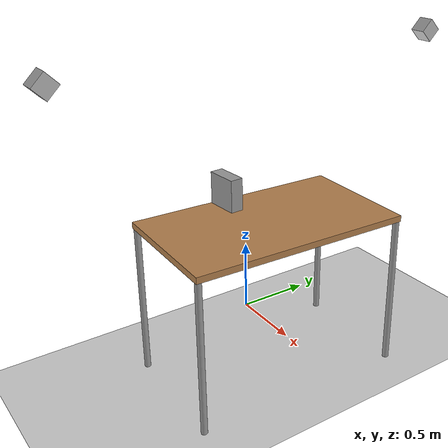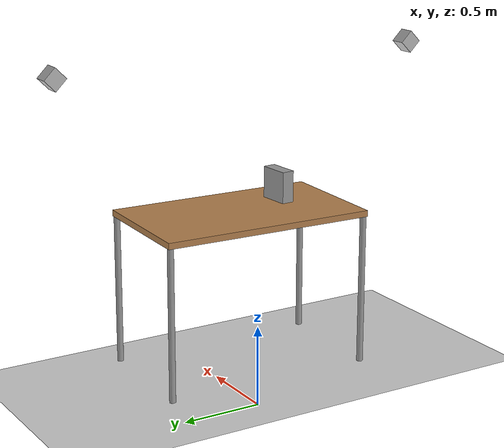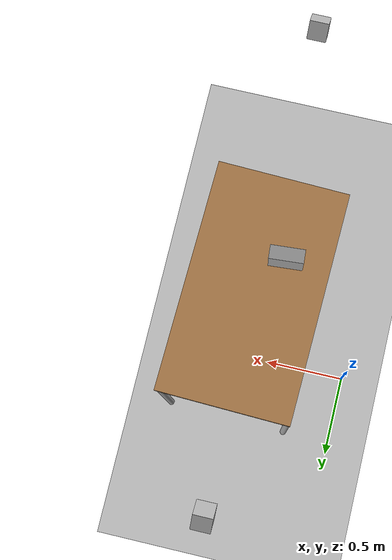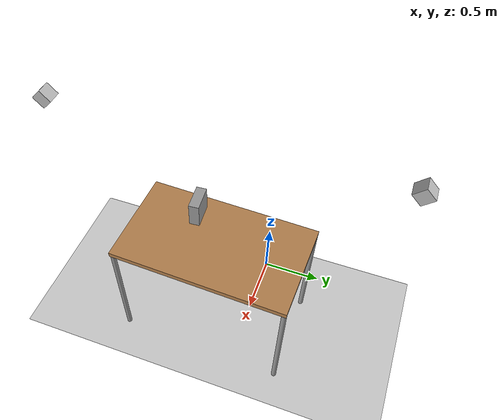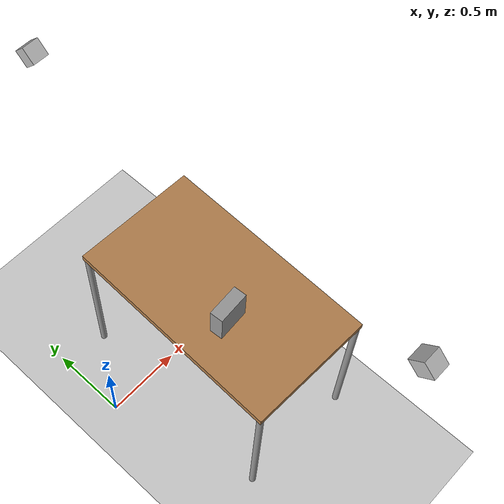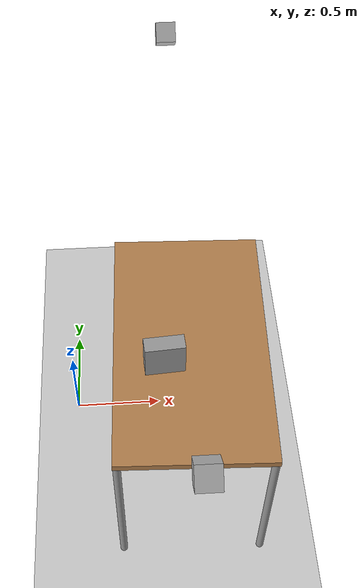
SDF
<sdf version="1.6">
 <world name="default">
  <light name="user_point_light_0" type="point">
   <pose>0.6 0.5 4 0 -0 0</pose>
   <diffuse>0.5 0.5 0.5 1</diffuse>
   <specular>0.1 0.1 0.1 1</specular>
   <attenuation>
    <range>20</range>
    <constant>0.5</constant>
    <linear>0.01</linear>
    <quadratic>0.001</quadratic>
   </attenuation>
   <cast_shadows>0</cast_shadows>
   <direction>0 0 -1</direction>
  </light>
  <light name="user_point_light_1" type="point">
   <pose>0.6 -1. 4 0 -0 0</pose>
   <diffuse>0.5 0.5 0.5 1</diffuse>
   <specular>0.1 0.1 0.1 1</specular>
   <attenuation>
    <range>20</range>
    <constant>0.5</constant>
    <linear>0.01</linear>
    <quadratic>0.001</quadratic>
   </attenuation>
   <cast_shadows>0</cast_shadows>
   <direction>0 0 -1</direction>
  </light>
  <light name="sun" type="directional">
   <pose>0 0 10 0 -0 0</pose>
   <diffuse>0.8 0.8 0.8 1</diffuse>
   <specular>0.1 0.1 0.1 1</specular>
   <attenuation>
    <range>1000</range>
    <constant>0.9</constant>
    <linear>0.01</linear>
    <quadratic>0.001</quadratic>
   </attenuation>
   <direction>-0.5 0.5 -1</direction>
  </light>
  <model name="ground_plane">
   <static>1</static>
   <link name="link">
    <collision name="collision">
     <geometry><plane><normal>0 0 1</normal><size>100 100</size></plane></geometry>
     <surface><friction><ode><mu>100</mu><mu2>50</mu2></ode></friction></surface>
    </collision>
    <visual name="visual">
     <cast_shadows>0</cast_shadows>
     <geometry><plane><normal>0 0 1</normal><size>100 100</size></plane></geometry>
     <material>
      <script><uri>file://media/materials/scripts/gazebo.material</uri><name>Gazebo/Grey</name></script>
     </material>
    </visual>
   </link>
  </model>
  <gravity>0 0 -9.8</gravity>
  <magnetic_field>6e-06 2.3e-05 -4.2e-05</magnetic_field>
  <atmosphere type="adiabatic"/>
  <physics name="default_physics" default="0" type="ode">
   <max_step_size>0.001</max_step_size>
   <real_time_factor>1</real_time_factor>
   <real_time_update_rate>1000</real_time_update_rate>
  </physics>
  <scene><ambient>0.4 0.4 0.4 1</ambient><background>0.7 0.7 0.7 1</background><shadows>1</shadows></scene>
  <spherical_coordinates>
   <surface_model>EARTH_WGS84</surface_model>
   <latitude_deg>0</latitude_deg>
   <longitude_deg>0</longitude_deg>
   <elevation>0</elevation>
   <heading_deg>0</heading_deg>
  </spherical_coordinates>
  <model name="table_0_0_0_0_0">
   <link name="link">
    <pose>-1.11781 1.78287 0 0 -0 0</pose>
    <inertial>
     <inertia><ixx>100</ixx><ixy>0</ixy><ixz>0</ixz><iyy>100</iyy><iyz>0</iyz><izz>100</izz></inertia>
     <mass>1000</mass>
     <pose>0 0 0.5 0 -0 0</pose>
    </inertial>
    <visual name="front_left_leg">
     <pose>0.68 0.38 0.5 0 -0 0</pose>
     <geometry><cylinder><radius>0.02</radius><length>1</length></cylinder></geometry>
     <material>
      <script><uri>file://media/materials/scripts/gazebo.material</uri><name>Gazebo/Grey</name></script>
      <ambient>0.3 0.3 0.3 1</ambient>
      <diffuse>0.7 0.7 0.7 1</diffuse>
      <specular>0.01 0.01 0.01 1</specular>
      <emissive>0 0 0 1</emissive>
      <shader type="vertex"><normal_map>__default__</normal_map></shader>
     </material>
    </visual>
    <visual name="visual1">
     <pose>0 0 1 0 -0 0</pose>
     <geometry><box><size>1.4 0.8 0.04</size></box></geometry>
     <material>
      <script><uri>file://media/materials/scripts/gazebo.material</uri><name>Gazebo/Wood</name></script>
      <ambient>1 1 1 1</ambient>
      <diffuse>1 1 1 1</diffuse>
      <specular>0.2 0.2 0.2 1</specular>
      <emissive>0 0 0 1</emissive>
      <shader type="vertex"><normal_map>__default__</normal_map></shader>
     </material>
    </visual>
    <visual name="front_right_leg">
     <pose>0.68 -0.38 0.5 0 -0 0</pose>
     <geometry><cylinder><radius>0.02</radius><length>1</length></cylinder></geometry>
     <material>
      <script><uri>file://media/materials/scripts/gazebo.material</uri><name>Gazebo/Grey</name></script>
      <ambient>0.3 0.3 0.3 1</ambient>
      <diffuse>0.7 0.7 0.7 1</diffuse>
      <specular>0.01 0.01 0.01 1</specular>
      <emissive>0 0 0 1</emissive>
      <shader type="vertex"><normal_map>__default__</normal_map></shader>
     </material>
    </visual>
    <visual name="back_right_leg">
     <pose>-0.68 -0.38 0.5 0 -0 0</pose>
     <geometry><cylinder><radius>0.02</radius><length>1</length></cylinder></geometry>
     <material>
      <script><uri>file://media/materials/scripts/gazebo.material</uri><name>Gazebo/Grey</name></script>
      <ambient>0.3 0.3 0.3 1</ambient>
      <diffuse>0.7 0.7 0.7 1</diffuse>
      <specular>0.01 0.01 0.01 1</specular>
      <emissive>0 0 0 1</emissive>
      <shader type="vertex"><normal_map>__default__</normal_map></shader>
     </material>
    </visual>
    <visual name="back_left_leg">
     <pose>-0.68 0.38 0.5 0 -0 0</pose>
     <geometry><cylinder><radius>0.02</radius><length>1</length></cylinder></geometry>
     <material>
      <script><uri>file://media/materials/scripts/gazebo.material</uri><name>Gazebo/Grey</name></script>
      <ambient>0.3 0.3 0.3 1</ambient>
      <diffuse>0.7 0.7 0.7 1</diffuse>
      <specular>0.01 0.01 0.01 1</specular>
      <emissive>0 0 0 1</emissive>
      <shader type="vertex"><normal_map>__default__</normal_map></shader>
     </material>
    </visual>
    <collision name="back_right_leg">
     <pose>-0.68 -0.38 0.5 0 -0 0</pose>
     <geometry><cylinder><radius>0.02</radius><length>1</length></cylinder></geometry>
     <surface>
      <friction>
       <ode><mu>1</mu><mu2>1</mu2><fdir1>0 0 0</fdir1><slip1>0</slip1><slip2>0</slip2></ode>
       <torsional>
        <coefficient>1</coefficient>
        <patch_radius>0</patch_radius>
        <surface_radius>0</surface_radius>
        <use_patch_radius>1</use_patch_radius>
        <ode><slip>0</slip></ode>
       </torsional>
      </friction>
      <bounce><restitution_coefficient>0</restitution_coefficient><threshold>1e+06</threshold></bounce>
      <contact>
       <collide_without_contact>0</collide_without_contact>
       <collide_without_contact_bitmask>1</collide_without_contact_bitmask>
       <collide_bitmask>1</collide_bitmask>
       <ode>
        <soft_cfm>0</soft_cfm>
        <soft_erp>0.2</soft_erp>
        <kp>1e+13</kp>
        <kd>1</kd>
        <max_vel>0.01</max_vel>
        <min_depth>0</min_depth>
       </ode>
       <bullet>
        <split_impulse>1</split_impulse>
        <split_impulse_penetration_threshold>-0.01</split_impulse_penetration_threshold>
        <soft_cfm>0</soft_cfm>
        <soft_erp>0.2</soft_erp>
        <kp>1e+13</kp>
        <kd>1</kd>
       </bullet>
      </contact>
     </surface>
    </collision>
    <collision name="surface">
     <pose>0 0 1 0 -0 0</pose>
     <geometry><box><size>1.5 0.8 0.03</size></box></geometry>
     <surface>
      <friction>
       <ode><mu>0.6</mu><mu2>0.6</mu2><fdir1>0 0 0</fdir1><slip1>0</slip1><slip2>0</slip2></ode>
       <torsional>
        <coefficient>1</coefficient>
        <patch_radius>0</patch_radius>
        <surface_radius>0</surface_radius>
        <use_patch_radius>1</use_patch_radius>
        <ode><slip>0</slip></ode>
       </torsional>
      </friction>
      <bounce><restitution_coefficient>0</restitution_coefficient><threshold>1e+06</threshold></bounce>
      <contact>
       <collide_without_contact>0</collide_without_contact>
       <collide_without_contact_bitmask>1</collide_without_contact_bitmask>
       <collide_bitmask>1</collide_bitmask>
       <ode>
        <soft_cfm>0</soft_cfm>
        <soft_erp>0.2</soft_erp>
        <kp>1e+13</kp>
        <kd>1</kd>
        <max_vel>0.01</max_vel>
        <min_depth>0</min_depth>
       </ode>
       <bullet>
        <split_impulse>1</split_impulse>
        <split_impulse_penetration_threshold>-0.01</split_impulse_penetration_threshold>
        <soft_cfm>0</soft_cfm>
        <soft_erp>0.2</soft_erp>
        <kp>1e+13</kp>
        <kd>1</kd>
       </bullet>
      </contact>
     </surface>
    </collision>
    <collision name="front_right_leg">
     <pose>0.68 -0.38 0.5 0 -0 0</pose>
     <geometry><cylinder><radius>0.02</radius><length>1</length></cylinder></geometry>
     <surface>
      <friction>
       <ode><mu>1</mu><mu2>1</mu2><fdir1>0 0 0</fdir1><slip1>0</slip1><slip2>0</slip2></ode>
       <torsional>
        <coefficient>1</coefficient>
        <patch_radius>0</patch_radius>
        <surface_radius>0</surface_radius>
        <use_patch_radius>1</use_patch_radius>
        <ode><slip>0</slip></ode>
       </torsional>
      </friction>
      <bounce><restitution_coefficient>0</restitution_coefficient><threshold>1e+06</threshold></bounce>
      <contact>
       <collide_without_contact>0</collide_without_contact>
       <collide_without_contact_bitmask>1</collide_without_contact_bitmask>
       <collide_bitmask>1</collide_bitmask>
       <ode>
        <soft_cfm>0</soft_cfm>
        <soft_erp>0.2</soft_erp>
        <kp>1e+13</kp>
        <kd>1</kd>
        <max_vel>0.01</max_vel>
        <min_depth>0</min_depth>
       </ode>
       <bullet>
        <split_impulse>1</split_impulse>
        <split_impulse_penetration_threshold>-0.01</split_impulse_penetration_threshold>
        <soft_cfm>0</soft_cfm>
        <soft_erp>0.2</soft_erp>
        <kp>1e+13</kp>
        <kd>1</kd>
       </bullet>
      </contact>
     </surface>
    </collision>
    <collision name="back_left_leg">
     <pose>-0.68 0.38 0.5 0 -0 0</pose>
     <geometry><cylinder><radius>0.02</radius><length>1</length></cylinder></geometry>
     <surface>
      <friction>
       <ode><mu>1</mu><mu2>1</mu2><fdir1>0 0 0</fdir1><slip1>0</slip1><slip2>0</slip2></ode>
       <torsional>
        <coefficient>1</coefficient>
        <patch_radius>0</patch_radius>
        <surface_radius>0</surface_radius>
        <use_patch_radius>1</use_patch_radius>
        <ode><slip>0</slip></ode>
       </torsional>
      </friction>
      <bounce><restitution_coefficient>0</restitution_coefficient><threshold>1e+06</threshold></bounce>
      <contact>
       <collide_without_contact>0</collide_without_contact>
       <collide_without_contact_bitmask>1</collide_without_contact_bitmask>
       <collide_bitmask>1</collide_bitmask>
       <ode>
        <soft_cfm>0</soft_cfm>
        <soft_erp>0.2</soft_erp>
        <kp>1e+13</kp>
        <kd>1</kd>
        <max_vel>0.01</max_vel>
        <min_depth>0</min_depth>
       </ode>
       <bullet>
        <split_impulse>1</split_impulse>
        <split_impulse_penetration_threshold>-0.01</split_impulse_penetration_threshold>
        <soft_cfm>0</soft_cfm>
        <soft_erp>0.2</soft_erp>
        <kp>1e+13</kp>
        <kd>1</kd>
       </bullet>
      </contact>
     </surface>
    </collision>
    <collision name="front_left_leg">
     <pose>0.68 0.38 0.5 0 -0 0</pose>
     <geometry><cylinder><radius>0.02</radius><length>1</length></cylinder></geometry>
     <surface>
      <friction>
       <ode><mu>1</mu><mu2>1</mu2><fdir1>0 0 0</fdir1><slip1>0</slip1><slip2>0</slip2></ode>
       <torsional>
        <coefficient>1</coefficient>
        <patch_radius>0</patch_radius>
        <surface_radius>0</surface_radius>
        <use_patch_radius>1</use_patch_radius>
        <ode><slip>0</slip></ode>
       </torsional>
      </friction>
      <bounce><restitution_coefficient>0</restitution_coefficient><threshold>1e+06</threshold></bounce>
      <contact>
       <collide_without_contact>0</collide_without_contact>
       <collide_without_contact_bitmask>1</collide_without_contact_bitmask>
       <collide_bitmask>1</collide_bitmask>
       <ode>
        <soft_cfm>0</soft_cfm>
        <soft_erp>0.2</soft_erp>
        <kp>1e+13</kp>
        <kd>1</kd>
        <max_vel>0.01</max_vel>
        <min_depth>0</min_depth>
       </ode>
       <bullet>
        <split_impulse>1</split_impulse>
        <split_impulse_penetration_threshold>-0.01</split_impulse_penetration_threshold>
        <soft_cfm>0</soft_cfm>
        <soft_erp>0.2</soft_erp>
        <kp>1e+13</kp>
        <kd>1</kd>
       </bullet>
      </contact>
     </surface>
    </collision>
   </link>
   <static>1</static>
   <pose>-1.16173 -1.32949 -6e-05 0 1e-06 -1.60293</pose>
  </model>
  <model name="object">
   <link name="link">
    <inertial>
     <mass>1</mass>
     <inertia><ixx>0.01</ixx><ixy>0</ixy><ixz>0</ixz><iyy>0.01</iyy><iyz>0</iyz><izz>0.008</izz></inertia>
    </inertial>
    <visual name="visual">
     <geometry><box><size>0.2 0.08 0.2</size></box></geometry>
     <material>
      <script><name>Gazebo/Grey</name><uri>file://media/materials/scripts/gazebo.material</uri></script>
      <ambient>0.3 0.3 0.3 1</ambient>
      <diffuse>0.7 0.7 0.7 1</diffuse>
      <specular>0.01 0.01 0.01 1</specular>
      <emissive>0 0 0 1</emissive>
      <shader type="vertex"><normal_map>__default__</normal_map></shader>
     </material>
    </visual>
    <collision name="collision">
     <geometry><box><size>0.2 0.08 0.2</size></box></geometry>
     <surface>
      <friction>
       <ode><mu>10000</mu><mu2>10000</mu2><fdir1>0 0 0</fdir1><slip1>0</slip1><slip2>0</slip2></ode>
       <torsional>
        <coefficient>1</coefficient>
        <patch_radius>0</patch_radius>
        <surface_radius>0</surface_radius>
        <use_patch_radius>1</use_patch_radius>
        <ode><slip>0</slip></ode>
       </torsional>
      </friction>
      <bounce><restitution_coefficient>0</restitution_coefficient><threshold>1e+06</threshold></bounce>
      <contact>
       <collide_without_contact>0</collide_without_contact>
       <collide_without_contact_bitmask>1</collide_without_contact_bitmask>
       <collide_bitmask>1</collide_bitmask>
       <ode>
        <soft_cfm>0</soft_cfm>
        <soft_erp>0.2</soft_erp>
        <kp>1e+13</kp>
        <kd>1</kd>
        <max_vel>0.01</max_vel>
        <min_depth>0</min_depth>
       </ode>
       <bullet>
        <split_impulse>1</split_impulse>
        <split_impulse_penetration_threshold>-0.01</split_impulse_penetration_threshold>
        <soft_cfm>0</soft_cfm>
        <soft_erp>0.2</soft_erp>
        <kp>1e+13</kp>
        <kd>1</kd>
       </bullet>
      </contact>
     </surface>
    </collision>
   </link>
   <static>0</static>
   <pose>0.510386 -0.463749 1.19869 1e-06 -0 0.073329</pose>
  </model>
  <model name="kinect">
   <static>1</static>
   <pose>0.6 1 2 0 0.785 -1.57</pose>
   <link name="link">
    <inertial>
     <mass>0.1</mass>
     <inertia><ixx>1</ixx><ixy>0</ixy><ixz>0</ixz><iyy>1</iyy><iyz>0</iyz><izz>1</izz></inertia>
    </inertial>
    <collision name="collision"><geometry><box><size>0.073 0.276 0.072</size></box></geometry></collision>
    <visual name="visual"><geometry><box><size>0.1 0.1 0.1</size></box></geometry></visual>
    <sensor name="camera" type="depth">
     <update_rate>20</update_rate>
     <camera name="__default__">
      <horizontal_fov>1.0472</horizontal_fov>
      <image><width>640</width><height>480</height><format>R8G8B8</format></image>
      <clip><near>0.01</near><far>5</far></clip>
     </camera>
     <plugin filename="libgazebo_ros_openni_kinect.so" name="kinect_camera_controller">
      <cameraName>robot1_camera</cameraName>
      <alwaysOn>true</alwaysOn>
      <updateRate>20.0</updateRate>
      <imageTopicName>rgb/image_raw</imageTopicName>
      <depthImageTopicName>depth/image_raw</depthImageTopicName>
      <pointCloudTopicName>depth/points</pointCloudTopicName>
      <cameraInfoTopicName>rgb/camera_info</cameraInfoTopicName>
      <depthImageCameraInfoTopicName>depth/camera_info</depthImageCameraInfoTopicName>
      <frameName>camera1_stand</frameName>
      <baseline>0.2</baseline>
      <distortion_k1>0.00000001</distortion_k1>
      <distortion_k2>0.00000001</distortion_k2>
      <distortion_k3>0.00000001</distortion_k3>
      <distortion_t1>0.00000001</distortion_t1>
      <distortion_t2>0.00000001</distortion_t2>
      <pointCloudCutoff>0.5</pointCloudCutoff>
      <robotNamespace>/</robotNamespace>
     </plugin>
    </sensor>
   </link>
  </model>
  <model name="kinect">
   <static>1</static>
   <pose>0.6 -1.5 2 0 0.785 1.57</pose>
   <link name="link">
    <inertial>
     <mass>0.1</mass>
     <inertia><ixx>1</ixx><ixy>0</ixy><ixz>0</ixz><iyy>1</iyy><iyz>0</iyz><izz>1</izz></inertia>
    </inertial>
    <collision name="collision"><geometry><box><size>0.073 0.276 0.072</size></box></geometry></collision>
    <visual name="visual"><geometry><box><size>0.1 0.1 0.1</size></box></geometry></visual>
    <sensor name="camera" type="depth">
     <update_rate>20</update_rate>
     <camera name="__default__">
      <horizontal_fov>1.0472</horizontal_fov>
      <image><width>640</width><height>480</height><format>R8G8B8</format></image>
      <clip><near>0.01</near><far>5</far></clip>
     </camera>
     <plugin filename="libgazebo_ros_openni_kinect.so" name="kinect_camera_controller">
      <cameraName>robot2_camera</cameraName>
      <alwaysOn>true</alwaysOn>
      <updateRate>20.0</updateRate>
      <imageTopicName>rgb/image_raw</imageTopicName>
      <depthImageTopicName>depth/image_raw</depthImageTopicName>
      <pointCloudTopicName>depth/points</pointCloudTopicName>
      <cameraInfoTopicName>rgb/camera_info</cameraInfoTopicName>
      <depthImageCameraInfoTopicName>depth/camera_info</depthImageCameraInfoTopicName>
      <frameName>camera2_stand</frameName>
      <baseline>0.2</baseline>
      <distortion_k1>0.00000001</distortion_k1>
      <distortion_k2>0.00000001</distortion_k2>
      <distortion_k3>0.00000001</distortion_k3>
      <distortion_t1>0.00000001</distortion_t1>
      <distortion_t2>0.00000001</distortion_t2>
      <pointCloudCutoff>0.5</pointCloudCutoff>
      <robotNamespace>/</robotNamespace>
     </plugin>
    </sensor>
   </link>
  </model>
 </world>
</sdf>
